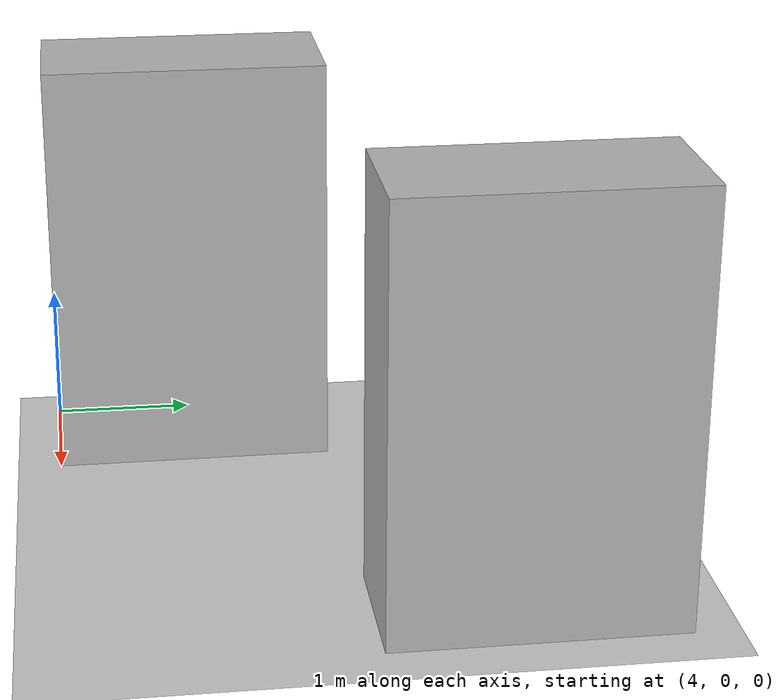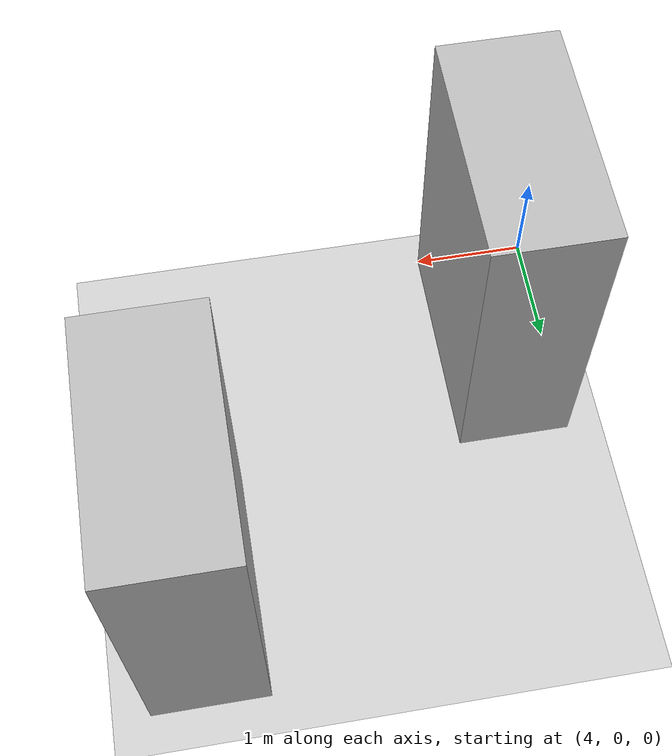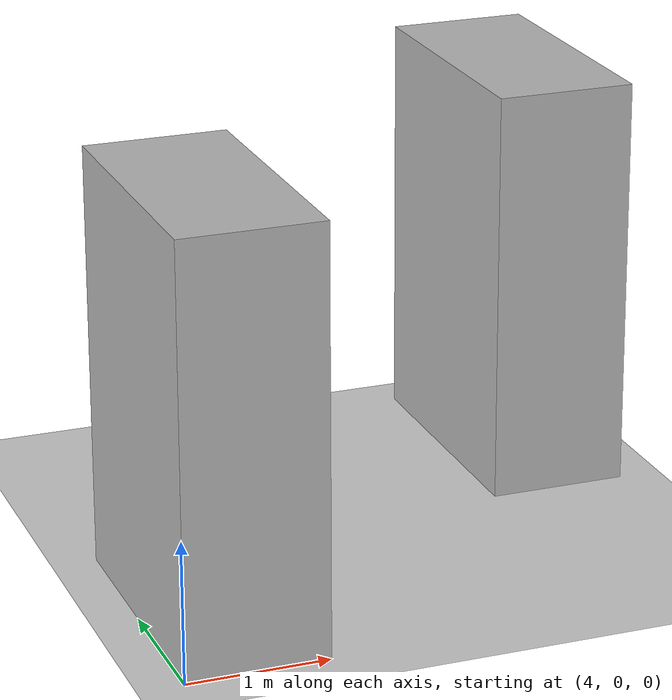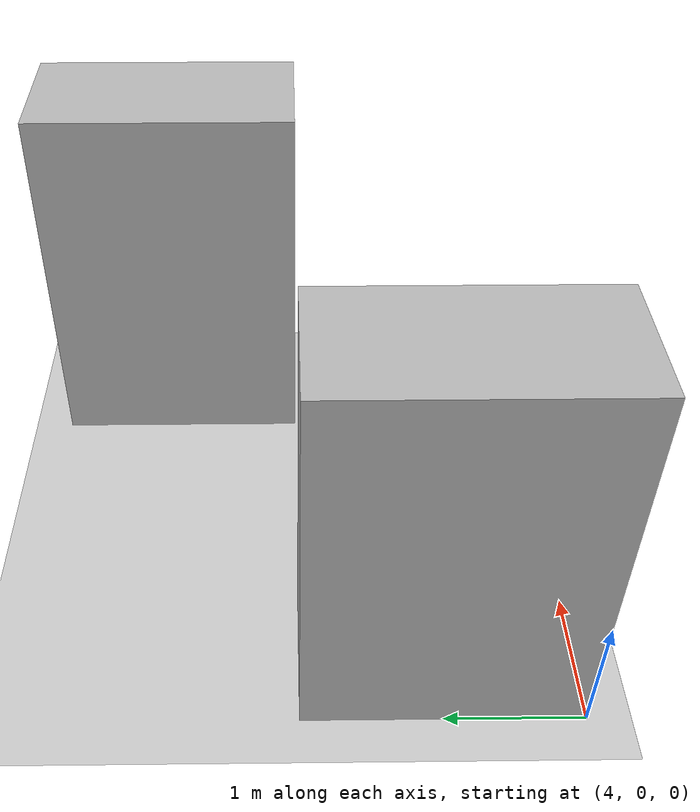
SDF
<?xml version="1.0" ?>
<sdf version="1.5">
  <world name="default">
    <!-- A global light source -->
    <include>
      <uri>model://sun</uri>
    </include>
    <!-- A ground plane -->
    <include>
      <uri>model://ground_plane</uri>
    </include>
    <physics name='default_physics' default='0' type='ode'>
      <gravity>0 0 -9.8066</gravity>
      <ode>
        <solver>
          <type>quick</type>
          <iters>10</iters>
          <sor>1.3</sor>
          <use_dynamic_moi_rescaling>0</use_dynamic_moi_rescaling>
        </solver>
        <constraints>
          <cfm>0</cfm>
          <erp>0.2</erp>
          <contact_max_correcting_vel>100</contact_max_correcting_vel>
          <contact_surface_layer>0.001</contact_surface_layer>
        </constraints>
      </ode>
      <max_step_size>0.004</max_step_size>
      <real_time_factor>1</real_time_factor>
      <real_time_update_rate>250</real_time_update_rate>
      <magnetic_field>6.0e-6 2.3e-5 -4.2e-5</magnetic_field>
    </physics>
    <scene>
      <ambient>0.0 0.0 0.0 1.0</ambient>
      <shadows>0</shadows>
    </scene>

    <model name="obstacle_1">
      <pose>4.5 1 1.5 0 0 0</pose>
      <static>true</static>
      <link name="link">
        <collision name="collision">
          <geometry>
            <box>
              <size>1 2 3</size>
            </box>
          </geometry>
        </collision>
        <visual name="visual">
          <geometry>
            <box>
              <size>1 2 3</size>
            </box>
          </geometry>
        </visual>
      </link>
    </model>

    <model name="obstacle_2">
      <pose>7.5 3 1.5 0 0 0</pose>
      <static>true</static>
      <link name="link">
        <collision name="collision">
          <geometry>
            <box>
              <size>1 2 3</size>
            </box>
          </geometry>
        </collision>
        <visual name="visual">
          <geometry>
            <box>
              <size>1 2 3</size>
            </box>
          </geometry>
        </visual>
      </link>
    </model>
  </world>
</sdf>
